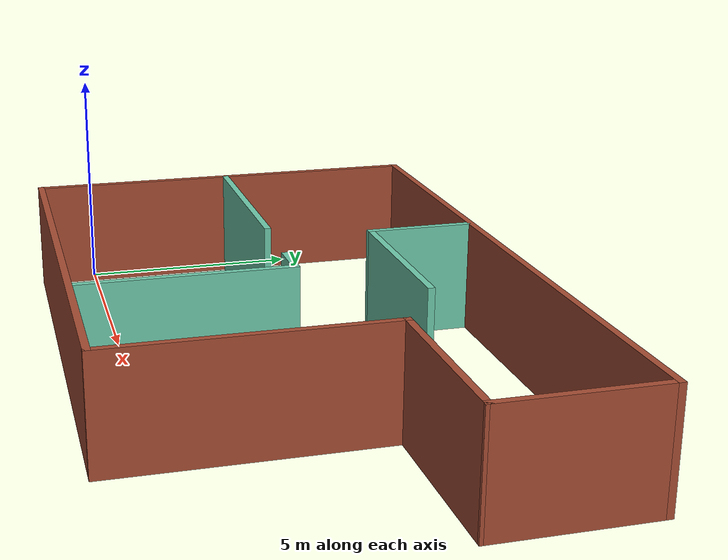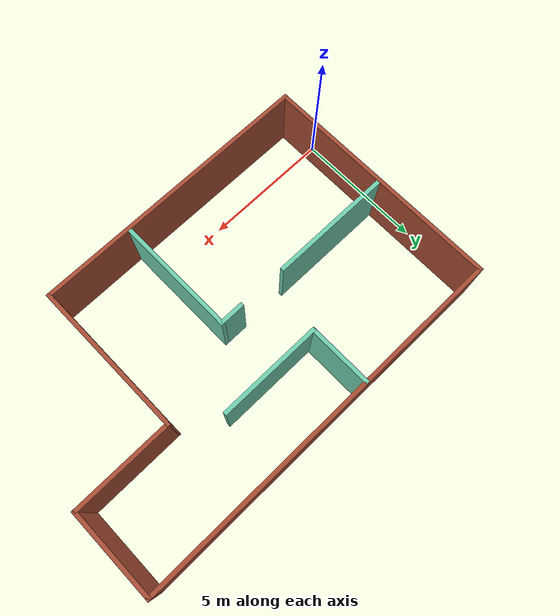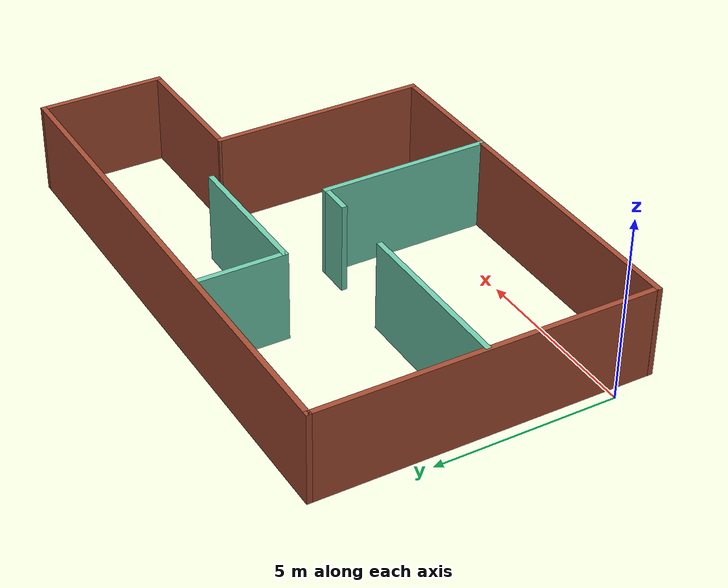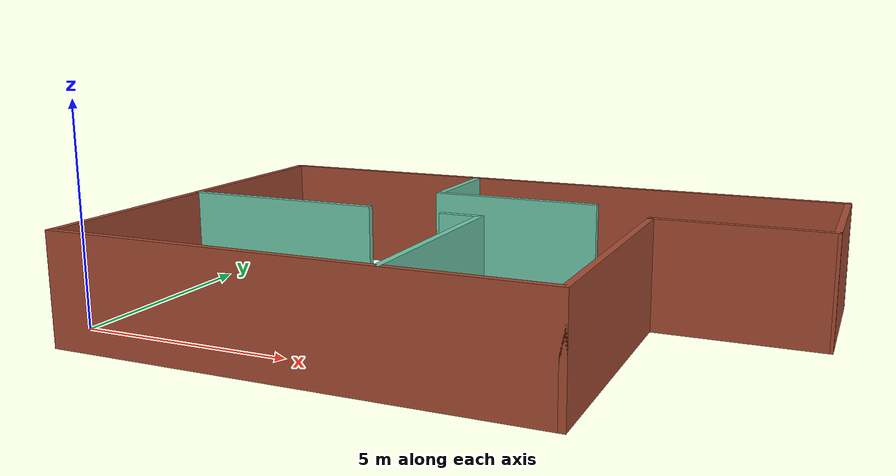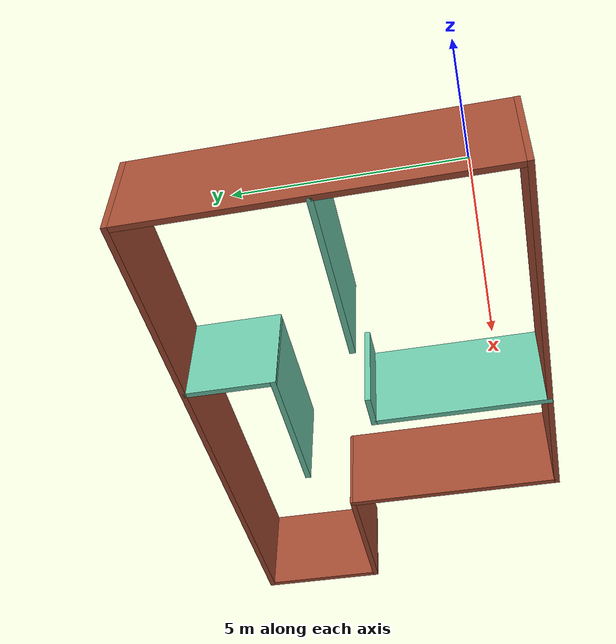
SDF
<?xml version='1.0'?>
<sdf version='1.6'>
  <model name='mybuilding'>
    <pose frame=''>7.678 3.3713 0 0 -0 0</pose>
    <link name='Wall_0'>
      <collision name='Wall_0_Collision'>
        <geometry>
          <box>
            <size>11 0.15 2.5</size>
          </box>
        </geometry>
        <pose frame=''>0 0 1.25 0 -0 0</pose>
      </collision>
      <visual name='Wall_0_Visual'>
        <pose frame=''>0 0 1.25 0 -0 0</pose>
        <geometry>
          <box>
            <size>11 0.15 2.5</size>
          </box>
        </geometry>
        <material>
          <script>
            <uri>file://media/materials/scripts/gazebo.material</uri>
            <name>Gazebo/Bricks</name>
          </script>
          <ambient>1 1 1 1</ambient>
        </material>
        <meta>
          <layer>0</layer>
        </meta>
      </visual>
      <pose frame=''>-1.87735 -4.6087 0 0 -0 0</pose>
    </link>
    <link name='Wall_1'>
      <collision name='Wall_1_Collision'>
        <geometry>
          <box>
            <size>6 0.15 2.5</size>
          </box>
        </geometry>
        <pose frame=''>0 0 1.25 0 -0 0</pose>
      </collision>
      <visual name='Wall_1_Visual'>
        <pose frame=''>0 0 1.25 0 -0 0</pose>
        <geometry>
          <box>
            <size>6 0.15 2.5</size>
          </box>
        </geometry>
        <material>
          <script>
            <uri>file://media/materials/scripts/gazebo.material</uri>
            <name>Gazebo/Bricks</name>
          </script>
          <ambient>1 1 1 1</ambient>
        </material>
        <meta>
          <layer>0</layer>
        </meta>
      </visual>
      <pose frame=''>3.54765 -1.6837 0 0 -0 1.5708</pose>
    </link>
    <link name='Wall_10'>
      <collision name='Wall_10_Collision'>
        <geometry>
          <box>
            <size>4.75 0.15 2.5</size>
          </box>
        </geometry>
        <pose frame=''>0 0 1.25 0 -0 0</pose>
      </collision>
      <visual name='Wall_10_Visual'>
        <pose frame=''>0 0 1.25 0 -0 0</pose>
        <geometry>
          <box>
            <size>4.75 0.15 2.5</size>
          </box>
        </geometry>
        <material>
          <script>
            <uri>file://media/materials/scripts/gazebo.material</uri>
            <name>Gazebo/Grey</name>
          </script>
          <ambient>0.435294 0.796078 0.67451 1</ambient>
        </material>
        <meta>
          <layer>0</layer>
        </meta>
      </visual>
      <pose frame=''>0.115748 -2.29552 0 0 0 -1.5708</pose>
    </link>
    <link name='Wall_12'>
      <collision name='Wall_12_Collision'>
        <geometry>
          <box>
            <size>2.5 0.15 2.5</size>
          </box>
        </geometry>
        <pose frame=''>0 0 1.25 0 -0 0</pose>
      </collision>
      <visual name='Wall_12_Visual'>
        <pose frame=''>0 0 1.25 0 -0 0</pose>
        <geometry>
          <box>
            <size>2.5 0.15 2.5</size>
          </box>
        </geometry>
        <material>
          <script>
            <uri>file://media/materials/scripts/gazebo.material</uri>
            <name>Gazebo/Grey</name>
          </script>
          <ambient>0.435294 0.796078 0.67451 1</ambient>
        </material>
        <meta>
          <layer>0</layer>
        </meta>
      </visual>
      <pose frame=''>-1.84452 3.40934 0 0 0 -1.5708</pose>
    </link>
    <link name='Wall_14'>
      <collision name='Wall_14_Collision'>
        <geometry>
          <box>
            <size>4 0.15 2.5</size>
          </box>
        </geometry>
        <pose frame=''>0 0 1.25 0 -0 0</pose>
      </collision>
      <visual name='Wall_14_Visual'>
        <pose frame=''>0 0 1.25 0 -0 0</pose>
        <geometry>
          <box>
            <size>4 0.15 2.5</size>
          </box>
        </geometry>
        <material>
          <script>
            <uri>file://media/materials/scripts/gazebo.material</uri>
            <name>Gazebo/Grey</name>
          </script>
          <ambient>0.435294 0.796078 0.67451 1</ambient>
        </material>
        <meta>
          <layer>0</layer>
        </meta>
      </visual>
      <pose frame=''>0.080478 2.23434 0 0 -0 0</pose>
    </link>
    <link name='Wall_2'>
      <collision name='Wall_2_Collision'>
        <geometry>
          <box>
            <size>3.90439 0.15 2.5</size>
          </box>
        </geometry>
        <pose frame=''>0 0 1.25 0 -0 0</pose>
      </collision>
      <visual name='Wall_2_Visual'>
        <pose frame=''>0 0 1.25 0 -0 0</pose>
        <geometry>
          <box>
            <size>3.90439 0.15 2.5</size>
          </box>
        </geometry>
        <material>
          <script>
            <uri>file://media/materials/scripts/gazebo.material</uri>
            <name>Gazebo/Bricks</name>
          </script>
          <ambient>1 1 1 1</ambient>
        </material>
        <meta>
          <layer>0</layer>
        </meta>
      </visual>
      <pose frame=''>5.42483 1.25 0 0 -0 0.004632</pose>
    </link>
    <link name='Wall_3'>
      <collision name='Wall_3_Collision'>
        <geometry>
          <box>
            <size>3.5 0.15 2.5</size>
          </box>
        </geometry>
        <pose frame=''>0 0 1.25 0 -0 0</pose>
      </collision>
      <visual name='Wall_3_Visual'>
        <pose frame=''>0 0 1.25 0 -0 0</pose>
        <geometry>
          <box>
            <size>3.5 0.15 2.5</size>
          </box>
        </geometry>
        <material>
          <script>
            <uri>file://media/materials/scripts/gazebo.material</uri>
            <name>Gazebo/Bricks</name>
          </script>
          <ambient>1 1 1 1</ambient>
        </material>
        <meta>
          <layer>0</layer>
        </meta>
      </visual>
      <pose frame=''>7.302 2.9337 0 0 -0 1.5708</pose>
    </link>
    <link name='Wall_4'>
      <collision name='Wall_4_Collision'>
        <geometry>
          <box>
            <size>14.75 0.15 2.5</size>
          </box>
        </geometry>
        <pose frame=''>0 0 1.25 0 -0 0</pose>
      </collision>
      <visual name='Wall_4_Visual'>
        <pose frame=''>0 0 1.25 0 -0 0</pose>
        <geometry>
          <box>
            <size>14.75 0.15 2.5</size>
          </box>
        </geometry>
        <material>
          <script>
            <uri>file://media/materials/scripts/gazebo.material</uri>
            <name>Gazebo/Bricks</name>
          </script>
          <ambient>1 1 1 1</ambient>
        </material>
        <meta>
          <layer>0</layer>
        </meta>
      </visual>
      <pose frame=''>0.002001 4.6087 0 0 -0 3.14159</pose>
    </link>
    <link name='Wall_5'>
      <collision name='Wall_5_Collision'>
        <geometry>
          <box>
            <size>9.25 0.15 2.5</size>
          </box>
        </geometry>
        <pose frame=''>0 0 1.25 0 -0 0</pose>
      </collision>
      <visual name='Wall_5_Visual'>
        <pose frame=''>0 0 1.25 0 -0 0</pose>
        <geometry>
          <box>
            <size>9.25 0.15 2.5</size>
          </box>
        </geometry>
        <material>
          <script>
            <uri>file://media/materials/scripts/gazebo.material</uri>
            <name>Gazebo/Bricks</name>
          </script>
          <ambient>1 1 1 1</ambient>
        </material>
        <meta>
          <layer>0</layer>
        </meta>
      </visual>
      <pose frame=''>-7.298 0.058696 0 0 0 -1.5708</pose>
    </link>
    <link name='Wall_7'>
      <collision name='Wall_7_Collision'>
        <geometry>
          <box>
            <size>4.75 0.15 2.5</size>
          </box>
        </geometry>
        <pose frame=''>0 0 1.25 0 -0 0</pose>
      </collision>
      <visual name='Wall_7_Visual'>
        <pose frame=''>0 0 1.25 0 -0 0</pose>
        <geometry>
          <box>
            <size>4.75 0.15 2.5</size>
          </box>
        </geometry>
        <material>
          <script>
            <uri>file://media/materials/scripts/gazebo.material</uri>
            <name>Gazebo/Grey</name>
          </script>
          <ambient>0.435294 0.796078 0.67451 1</ambient>
        </material>
        <meta>
          <layer>0</layer>
        </meta>
      </visual>
      <pose frame=''>-4.93191 0.05074 0 0 -0 3.14159</pose>
    </link>
    <link name='Wall_9'>
      <collision name='Wall_9_Collision'>
        <geometry>
          <box>
            <size>1 0.15 2.5</size>
          </box>
        </geometry>
        <pose frame=''>0 0 1.25 0 -0 0</pose>
      </collision>
      <visual name='Wall_9_Visual'>
        <pose frame=''>0 0 1.25 0 -0 0</pose>
        <geometry>
          <box>
            <size>1 0.15 2.5</size>
          </box>
        </geometry>
        <material>
          <script>
            <uri>file://media/materials/scripts/gazebo.material</uri>
            <name>Gazebo/Grey</name>
          </script>
          <ambient>0.435294 0.796078 0.67451 1</ambient>
        </material>
        <meta>
          <layer>0</layer>
        </meta>
      </visual>
      <pose frame=''>-0.309253 0.004478 0 0 -0 0</pose>
    </link>
    <static>1</static>
  </model>
</sdf>
